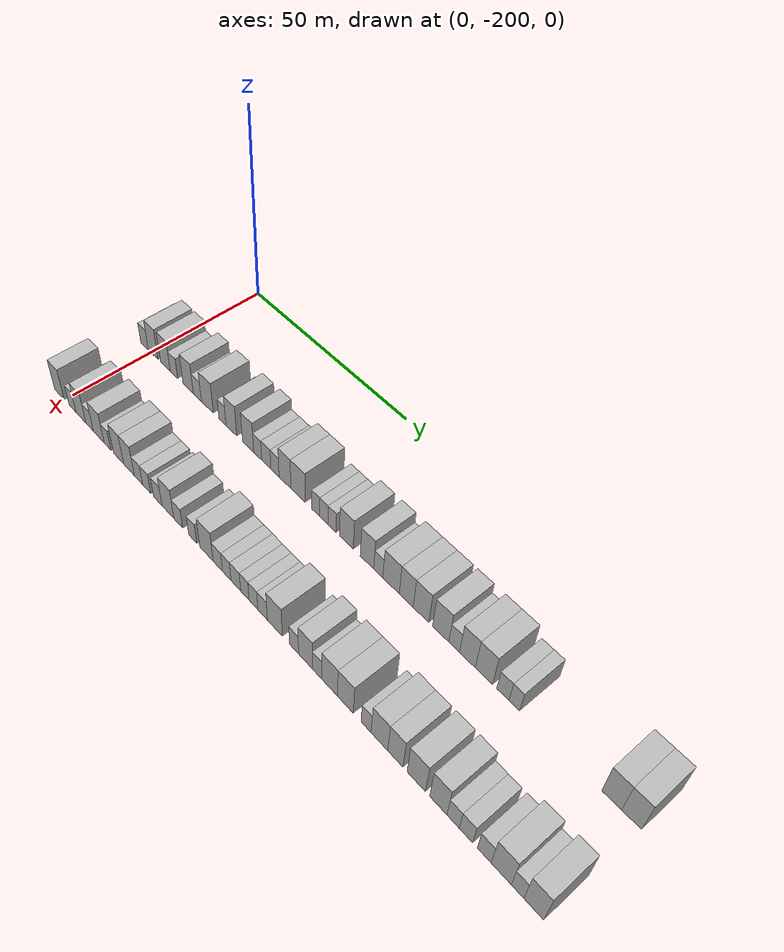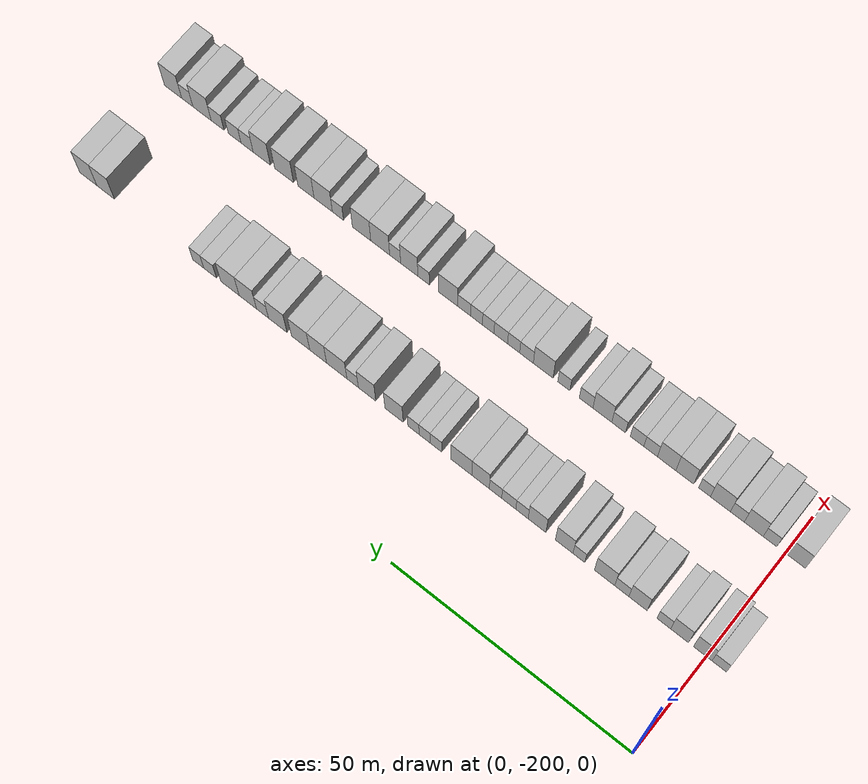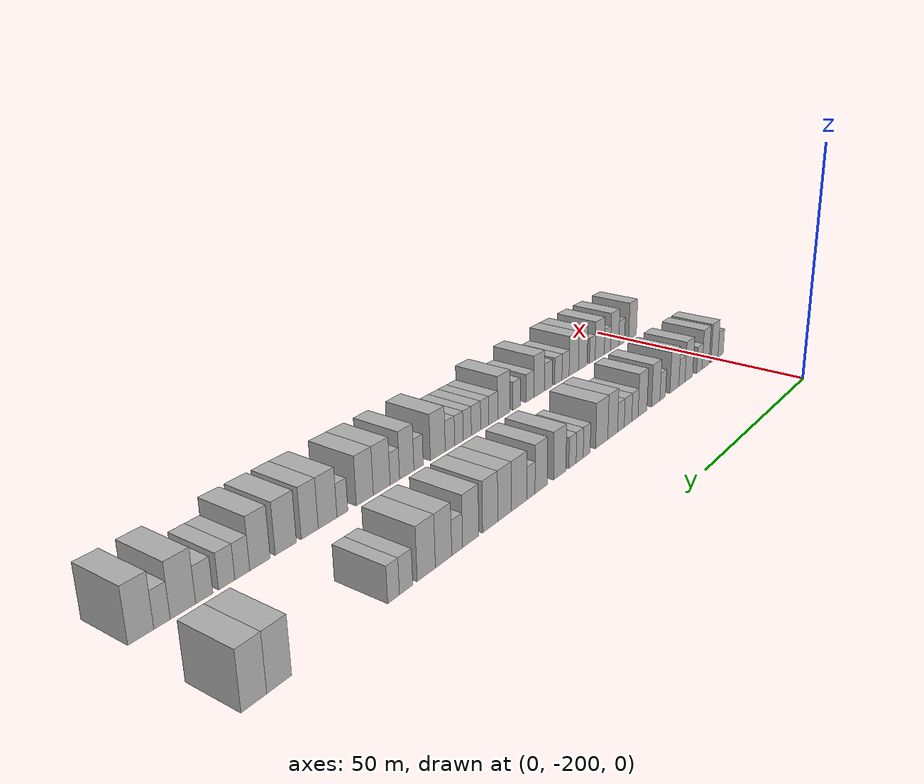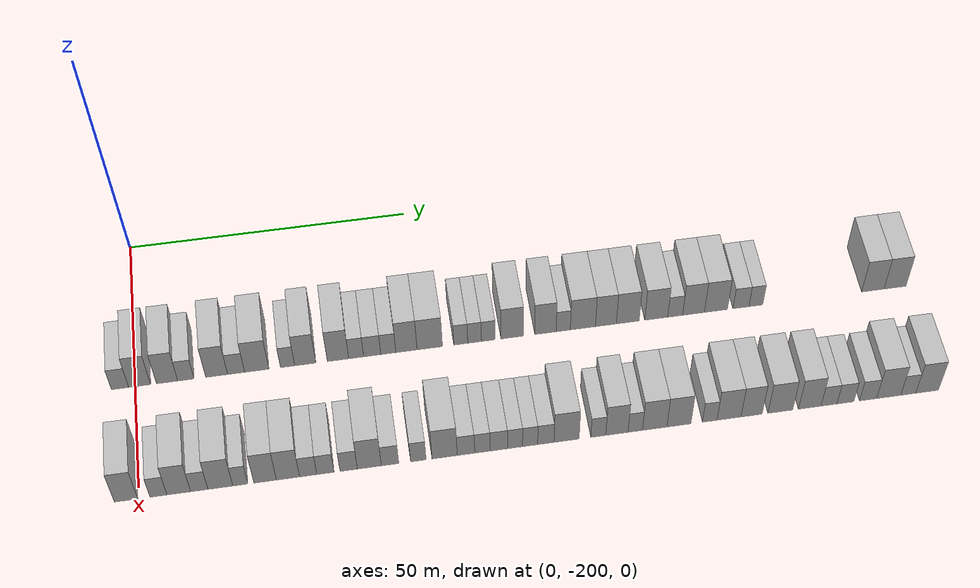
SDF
<sdf version="1.6">
 <world name="default">
  <model name="building_1">
   <static>1</static>
   <pose>25.0000 -202.5292 0 0.000000 0.000000 0.000000</pose>
   <link name="link">
    <pose>0 0 3.00 0 0 0</pose>
    <collision name="collision"><geometry><box><size>10.0000 2.9416 6.0000</size></box></geometry></collision>
    <visual name="visual">
     <cast_shadows>0</cast_shadows>
     <geometry><box><size>10.0000 2.9416 6.0000</size></box></geometry>
     <material>
      <script>
       <uri>model://HANNAS_wall/materials/scripts</uri>
       <uri>model://HANNAS_wall/materials/textures</uri>
       <name>vrc/HANNAS_wall</name>
      </script>
     </material>
    </visual>
   </link>
  </model>
  <model name="building_2">
   <static>1</static>
   <pose>25.0000 -199.1781 0 0.000000 0.000000 0.000000</pose>
   <link name="link">
    <pose>0 0 4.50 0 0 0</pose>
    <collision name="collision"><geometry><box><size>10.0000 3.7606 9.0000</size></box></geometry></collision>
    <visual name="visual">
     <cast_shadows>0</cast_shadows>
     <geometry><box><size>10.0000 3.7606 9.0000</size></box></geometry>
     <material>
      <script>
       <uri>model://HANNAS_wall/materials/scripts</uri>
       <uri>model://HANNAS_wall/materials/textures</uri>
       <name>vrc/HANNAS_wall</name>
      </script>
     </material>
    </visual>
   </link>
  </model>
  <model name="building_3">
   <static>1</static>
   <pose>25.0000 -194.4770 0 0.000000 0.000000 0.000000</pose>
   <link name="link">
    <pose>0 0 4.50 0 0 0</pose>
    <collision name="collision"><geometry><box><size>10.0000 3.6417 9.0000</size></box></geometry></collision>
    <visual name="visual">
     <cast_shadows>0</cast_shadows>
     <geometry><box><size>10.0000 3.6417 9.0000</size></box></geometry>
     <material>
      <script>
       <uri>model://HANNAS_wall/materials/scripts</uri>
       <uri>model://HANNAS_wall/materials/textures</uri>
       <name>vrc/HANNAS_wall</name>
      </script>
     </material>
    </visual>
   </link>
  </model>
  <model name="building_4">
   <static>1</static>
   <pose>25.0000 -191.2516 0 0.000000 0.000000 0.000000</pose>
   <link name="link">
    <pose>0 0 3.00 0 0 0</pose>
    <collision name="collision"><geometry><box><size>10.0000 2.8091 6.0000</size></box></geometry></collision>
    <visual name="visual">
     <cast_shadows>0</cast_shadows>
     <geometry><box><size>10.0000 2.8091 6.0000</size></box></geometry>
     <material>
      <script>
       <uri>model://HANNAS_wall/materials/scripts</uri>
       <uri>model://HANNAS_wall/materials/textures</uri>
       <name>vrc/HANNAS_wall</name>
      </script>
     </material>
    </visual>
   </link>
  </model>
  <model name="building_5">
   <static>1</static>
   <pose>25.0000 -185.9650 0 0.000000 0.000000 0.000000</pose>
   <link name="link">
    <pose>0 0 4.50 0 0 0</pose>
    <collision name="collision"><geometry><box><size>10.0000 3.7642 9.0000</size></box></geometry></collision>
    <visual name="visual">
     <cast_shadows>0</cast_shadows>
     <geometry><box><size>10.0000 3.7642 9.0000</size></box></geometry>
     <material>
      <script>
       <uri>model://HANNAS_wall/materials/scripts</uri>
       <uri>model://HANNAS_wall/materials/textures</uri>
       <name>vrc/HANNAS_wall</name>
      </script>
     </material>
    </visual>
   </link>
  </model>
  <model name="building_6">
   <static>1</static>
   <pose>25.0000 -182.6085 0 0.000000 0.000000 0.000000</pose>
   <link name="link">
    <pose>0 0 3.00 0 0 0</pose>
    <collision name="collision"><geometry><box><size>10.0000 2.9489 6.0000</size></box></geometry></collision>
    <visual name="visual">
     <cast_shadows>0</cast_shadows>
     <geometry><box><size>10.0000 2.9489 6.0000</size></box></geometry>
     <material>
      <script>
       <uri>model://HANNAS_wall/materials/scripts</uri>
       <uri>model://HANNAS_wall/materials/textures</uri>
       <name>vrc/HANNAS_wall</name>
      </script>
     </material>
    </visual>
   </link>
  </model>
  <model name="building_7">
   <static>1</static>
   <pose>25.0000 -179.0327 0 0.000000 0.000000 0.000000</pose>
   <link name="link">
    <pose>0 0 4.50 0 0 0</pose>
    <collision name="collision"><geometry><box><size>10.0000 4.2026 9.0000</size></box></geometry></collision>
    <visual name="visual">
     <cast_shadows>0</cast_shadows>
     <geometry><box><size>10.0000 4.2026 9.0000</size></box></geometry>
     <material>
      <script>
       <uri>model://HANNAS_wall/materials/scripts</uri>
       <uri>model://HANNAS_wall/materials/textures</uri>
       <name>vrc/HANNAS_wall</name>
      </script>
     </material>
    </visual>
   </link>
  </model>
  <model name="building_8">
   <static>1</static>
   <pose>25.0000 -173.6945 0 0.000000 0.000000 0.000000</pose>
   <link name="link">
    <pose>0 0 3.00 0 0 0</pose>
    <collision name="collision"><geometry><box><size>10.0000 2.4739 6.0000</size></box></geometry></collision>
    <visual name="visual">
     <cast_shadows>0</cast_shadows>
     <geometry><box><size>10.0000 2.4739 6.0000</size></box></geometry>
     <material>
      <script>
       <uri>model://HANNAS_wall/materials/scripts</uri>
       <uri>model://HANNAS_wall/materials/textures</uri>
       <name>vrc/HANNAS_wall</name>
      </script>
     </material>
    </visual>
   </link>
  </model>
  <model name="building_9">
   <static>1</static>
   <pose>25.0000 -170.6190 0 0.000000 0.000000 0.000000</pose>
   <link name="link">
    <pose>0 0 4.50 0 0 0</pose>
    <collision name="collision"><geometry><box><size>10.0000 3.6771 9.0000</size></box></geometry></collision>
    <visual name="visual">
     <cast_shadows>0</cast_shadows>
     <geometry><box><size>10.0000 3.6771 9.0000</size></box></geometry>
     <material>
      <script>
       <uri>model://HANNAS_wall/materials/scripts</uri>
       <uri>model://HANNAS_wall/materials/textures</uri>
       <name>vrc/HANNAS_wall</name>
      </script>
     </material>
    </visual>
   </link>
  </model>
  <model name="building_10">
   <static>1</static>
   <pose>25.0000 -164.9156 0 0.000000 0.000000 0.000000</pose>
   <link name="link">
    <pose>0 0 4.50 0 0 0</pose>
    <collision name="collision"><geometry><box><size>10.0000 3.7297 9.0000</size></box></geometry></collision>
    <visual name="visual">
     <cast_shadows>0</cast_shadows>
     <geometry><box><size>10.0000 3.7297 9.0000</size></box></geometry>
     <material>
      <script>
       <uri>model://HANNAS_wall/materials/scripts</uri>
       <uri>model://HANNAS_wall/materials/textures</uri>
       <name>vrc/HANNAS_wall</name>
      </script>
     </material>
    </visual>
   </link>
  </model>
  <model name="building_11">
   <static>1</static>
   <pose>25.0000 -161.7470 0 0.000000 0.000000 0.000000</pose>
   <link name="link">
    <pose>0 0 3.00 0 0 0</pose>
    <collision name="collision"><geometry><box><size>10.0000 2.6075 6.0000</size></box></geometry></collision>
    <visual name="visual">
     <cast_shadows>0</cast_shadows>
     <geometry><box><size>10.0000 2.6075 6.0000</size></box></geometry>
     <material>
      <script>
       <uri>model://HANNAS_wall/materials/scripts</uri>
       <uri>model://HANNAS_wall/materials/textures</uri>
       <name>vrc/HANNAS_wall</name>
      </script>
     </material>
    </visual>
   </link>
  </model>
  <model name="building_12">
   <static>1</static>
   <pose>25.0000 -158.9450 0 0.000000 0.000000 0.000000</pose>
   <link name="link">
    <pose>0 0 3.00 0 0 0</pose>
    <collision name="collision"><geometry><box><size>10.0000 2.9965 6.0000</size></box></geometry></collision>
    <visual name="visual">
     <cast_shadows>0</cast_shadows>
     <geometry><box><size>10.0000 2.9965 6.0000</size></box></geometry>
     <material>
      <script>
       <uri>model://HANNAS_wall/materials/scripts</uri>
       <uri>model://HANNAS_wall/materials/textures</uri>
       <name>vrc/HANNAS_wall</name>
      </script>
     </material>
    </visual>
   </link>
  </model>
  <model name="building_13">
   <static>1</static>
   <pose>25.0000 -156.1276 0 0.000000 0.000000 0.000000</pose>
   <link name="link">
    <pose>0 0 3.00 0 0 0</pose>
    <collision name="collision"><geometry><box><size>10.0000 2.6382 6.0000</size></box></geometry></collision>
    <visual name="visual">
     <cast_shadows>0</cast_shadows>
     <geometry><box><size>10.0000 2.6382 6.0000</size></box></geometry>
     <material>
      <script>
       <uri>model://HANNAS_wall/materials/scripts</uri>
       <uri>model://HANNAS_wall/materials/textures</uri>
       <name>vrc/HANNAS_wall</name>
      </script>
     </material>
    </visual>
   </link>
  </model>
  <model name="building_14">
   <static>1</static>
   <pose>25.0000 -152.9464 0 0.000000 0.000000 0.000000</pose>
   <link name="link">
    <pose>0 0 4.50 0 0 0</pose>
    <collision name="collision"><geometry><box><size>10.0000 3.7243 9.0000</size></box></geometry></collision>
    <visual name="visual">
     <cast_shadows>0</cast_shadows>
     <geometry><box><size>10.0000 3.7243 9.0000</size></box></geometry>
     <material>
      <script>
       <uri>model://HANNAS_wall/materials/scripts</uri>
       <uri>model://HANNAS_wall/materials/textures</uri>
       <name>vrc/HANNAS_wall</name>
      </script>
     </material>
    </visual>
   </link>
  </model>
  <model name="building_15">
   <static>1</static>
   <pose>25.0000 -148.8476 0 0.000000 0.000000 0.000000</pose>
   <link name="link">
    <pose>0 0 4.50 0 0 0</pose>
    <collision name="collision"><geometry><box><size>10.0000 4.4733 9.0000</size></box></geometry></collision>
    <visual name="visual">
     <cast_shadows>0</cast_shadows>
     <geometry><box><size>10.0000 4.4733 9.0000</size></box></geometry>
     <material>
      <script>
       <uri>model://HANNAS_wall/materials/scripts</uri>
       <uri>model://HANNAS_wall/materials/textures</uri>
       <name>vrc/HANNAS_wall</name>
      </script>
     </material>
    </visual>
   </link>
  </model>
  <model name="building_16">
   <static>1</static>
   <pose>25.0000 -143.3843 0 0.000000 0.000000 0.000000</pose>
   <link name="link">
    <pose>0 0 3.00 0 0 0</pose>
    <collision name="collision"><geometry><box><size>10.0000 2.4534 6.0000</size></box></geometry></collision>
    <visual name="visual">
     <cast_shadows>0</cast_shadows>
     <geometry><box><size>10.0000 2.4534 6.0000</size></box></geometry>
     <material>
      <script>
       <uri>model://HANNAS_wall/materials/scripts</uri>
       <uri>model://HANNAS_wall/materials/textures</uri>
       <name>vrc/HANNAS_wall</name>
      </script>
     </material>
    </visual>
   </link>
  </model>
  <model name="building_17">
   <static>1</static>
   <pose>25.0000 -140.9417 0 0.000000 0.000000 0.000000</pose>
   <link name="link">
    <pose>0 0 3.00 0 0 0</pose>
    <collision name="collision"><geometry><box><size>10.0000 2.4318 6.0000</size></box></geometry></collision>
    <visual name="visual">
     <cast_shadows>0</cast_shadows>
     <geometry><box><size>10.0000 2.4318 6.0000</size></box></geometry>
     <material>
      <script>
       <uri>model://HANNAS_wall/materials/scripts</uri>
       <uri>model://HANNAS_wall/materials/textures</uri>
       <name>vrc/HANNAS_wall</name>
      </script>
     </material>
    </visual>
   </link>
  </model>
  <model name="building_18">
   <static>1</static>
   <pose>25.0000 -138.5001 0 0.000000 0.000000 0.000000</pose>
   <link name="link">
    <pose>0 0 3.00 0 0 0</pose>
    <collision name="collision"><geometry><box><size>10.0000 2.4512 6.0000</size></box></geometry></collision>
    <visual name="visual">
     <cast_shadows>0</cast_shadows>
     <geometry><box><size>10.0000 2.4512 6.0000</size></box></geometry>
     <material>
      <script>
       <uri>model://HANNAS_wall/materials/scripts</uri>
       <uri>model://HANNAS_wall/materials/textures</uri>
       <name>vrc/HANNAS_wall</name>
      </script>
     </material>
    </visual>
   </link>
  </model>
  <model name="building_19">
   <static>1</static>
   <pose>25.0000 -134.2684 0 0.000000 0.000000 0.000000</pose>
   <link name="link">
    <pose>0 0 4.50 0 0 0</pose>
    <collision name="collision"><geometry><box><size>10.0000 4.0122 9.0000</size></box></geometry></collision>
    <visual name="visual">
     <cast_shadows>0</cast_shadows>
     <geometry><box><size>10.0000 4.0122 9.0000</size></box></geometry>
     <material>
      <script>
       <uri>model://HANNAS_wall/materials/scripts</uri>
       <uri>model://HANNAS_wall/materials/textures</uri>
       <name>vrc/HANNAS_wall</name>
      </script>
     </material>
    </visual>
   </link>
  </model>
  <model name="building_20">
   <static>1</static>
   <pose>25.0000 -128.3569 0 0.000000 0.000000 0.000000</pose>
   <link name="link">
    <pose>0 0 4.50 0 0 0</pose>
    <collision name="collision"><geometry><box><size>10.0000 3.8109 9.0000</size></box></geometry></collision>
    <visual name="visual">
     <cast_shadows>0</cast_shadows>
     <geometry><box><size>10.0000 3.8109 9.0000</size></box></geometry>
     <material>
      <script>
       <uri>model://HANNAS_wall/materials/scripts</uri>
       <uri>model://HANNAS_wall/materials/textures</uri>
       <name>vrc/HANNAS_wall</name>
      </script>
     </material>
    </visual>
   </link>
  </model>
  <model name="building_21">
   <static>1</static>
   <pose>25.0000 -125.1883 0 0.000000 0.000000 0.000000</pose>
   <link name="link">
    <pose>0 0 3.00 0 0 0</pose>
    <collision name="collision"><geometry><box><size>10.0000 2.5262 6.0000</size></box></geometry></collision>
    <visual name="visual">
     <cast_shadows>0</cast_shadows>
     <geometry><box><size>10.0000 2.5262 6.0000</size></box></geometry>
     <material>
      <script>
       <uri>model://HANNAS_wall/materials/scripts</uri>
       <uri>model://HANNAS_wall/materials/textures</uri>
       <name>vrc/HANNAS_wall</name>
      </script>
     </material>
    </visual>
   </link>
  </model>
  <model name="building_22">
   <static>1</static>
   <pose>25.0000 -121.6837 0 0.000000 0.000000 0.000000</pose>
   <link name="link">
    <pose>0 0 4.50 0 0 0</pose>
    <collision name="collision"><geometry><box><size>10.0000 4.4832 9.0000</size></box></geometry></collision>
    <visual name="visual">
     <cast_shadows>0</cast_shadows>
     <geometry><box><size>10.0000 4.4832 9.0000</size></box></geometry>
     <material>
      <script>
       <uri>model://HANNAS_wall/materials/scripts</uri>
       <uri>model://HANNAS_wall/materials/textures</uri>
       <name>vrc/HANNAS_wall</name>
      </script>
     </material>
    </visual>
   </link>
  </model>
  <model name="building_23">
   <static>1</static>
   <pose>25.0000 -117.5654 0 0.000000 0.000000 0.000000</pose>
   <link name="link">
    <pose>0 0 4.50 0 0 0</pose>
    <collision name="collision"><geometry><box><size>10.0000 3.7533 9.0000</size></box></geometry></collision>
    <visual name="visual">
     <cast_shadows>0</cast_shadows>
     <geometry><box><size>10.0000 3.7533 9.0000</size></box></geometry>
     <material>
      <script>
       <uri>model://HANNAS_wall/materials/scripts</uri>
       <uri>model://HANNAS_wall/materials/textures</uri>
       <name>vrc/HANNAS_wall</name>
      </script>
     </material>
    </visual>
   </link>
  </model>
  <model name="building_24">
   <static>1</static>
   <pose>25.0000 -113.6408 0 0.000000 0.000000 0.000000</pose>
   <link name="link">
    <pose>0 0 4.50 0 0 0</pose>
    <collision name="collision"><geometry><box><size>10.0000 4.0959 9.0000</size></box></geometry></collision>
    <visual name="visual">
     <cast_shadows>0</cast_shadows>
     <geometry><box><size>10.0000 4.0959 9.0000</size></box></geometry>
     <material>
      <script>
       <uri>model://HANNAS_wall/materials/scripts</uri>
       <uri>model://HANNAS_wall/materials/textures</uri>
       <name>vrc/HANNAS_wall</name>
      </script>
     </material>
    </visual>
   </link>
  </model>
  <model name="building_25">
   <static>1</static>
   <pose>25.0000 -108.5217 0 0.000000 0.000000 0.000000</pose>
   <link name="link">
    <pose>0 0 4.50 0 0 0</pose>
    <collision name="collision"><geometry><box><size>10.0000 4.1422 9.0000</size></box></geometry></collision>
    <visual name="visual">
     <cast_shadows>0</cast_shadows>
     <geometry><box><size>10.0000 4.1422 9.0000</size></box></geometry>
     <material>
      <script>
       <uri>model://HANNAS_wall/materials/scripts</uri>
       <uri>model://HANNAS_wall/materials/textures</uri>
       <name>vrc/HANNAS_wall</name>
      </script>
     </material>
    </visual>
   </link>
  </model>
  <model name="building_26">
   <static>1</static>
   <pose>25.0000 -105.1016 0 0.000000 0.000000 0.000000</pose>
   <link name="link">
    <pose>0 0 3.00 0 0 0</pose>
    <collision name="collision"><geometry><box><size>10.0000 2.6979 6.0000</size></box></geometry></collision>
    <visual name="visual">
     <cast_shadows>0</cast_shadows>
     <geometry><box><size>10.0000 2.6979 6.0000</size></box></geometry>
     <material>
      <script>
       <uri>model://HANNAS_wall/materials/scripts</uri>
       <uri>model://HANNAS_wall/materials/textures</uri>
       <name>vrc/HANNAS_wall</name>
      </script>
     </material>
    </visual>
   </link>
  </model>
  <model name="building_27">
   <static>1</static>
   <pose>25.0000 -101.7893 0 0.000000 0.000000 0.000000</pose>
   <link name="link">
    <pose>0 0 4.50 0 0 0</pose>
    <collision name="collision"><geometry><box><size>10.0000 3.9268 9.0000</size></box></geometry></collision>
    <visual name="visual">
     <cast_shadows>0</cast_shadows>
     <geometry><box><size>10.0000 3.9268 9.0000</size></box></geometry>
     <material>
      <script>
       <uri>model://HANNAS_wall/materials/scripts</uri>
       <uri>model://HANNAS_wall/materials/textures</uri>
       <name>vrc/HANNAS_wall</name>
      </script>
     </material>
    </visual>
   </link>
  </model>
  <model name="building_28">
   <static>1</static>
   <pose>25.0000 -97.7386 0 0.000000 0.000000 0.000000</pose>
   <link name="link">
    <pose>0 0 4.50 0 0 0</pose>
    <collision name="collision"><geometry><box><size>10.0000 4.1745 9.0000</size></box></geometry></collision>
    <visual name="visual">
     <cast_shadows>0</cast_shadows>
     <geometry><box><size>10.0000 4.1745 9.0000</size></box></geometry>
     <material>
      <script>
       <uri>model://HANNAS_wall/materials/scripts</uri>
       <uri>model://HANNAS_wall/materials/textures</uri>
       <name>vrc/HANNAS_wall</name>
      </script>
     </material>
    </visual>
   </link>
  </model>
  <model name="building_29">
   <static>1</static>
   <pose>25.0000 -93.1996 0 0.000000 0.000000 0.000000</pose>
   <link name="link">
    <pose>0 0 3.00 0 0 0</pose>
    <collision name="collision"><geometry><box><size>10.0000 2.9034 6.0000</size></box></geometry></collision>
    <visual name="visual">
     <cast_shadows>0</cast_shadows>
     <geometry><box><size>10.0000 2.9034 6.0000</size></box></geometry>
     <material>
      <script>
       <uri>model://HANNAS_wall/materials/scripts</uri>
       <uri>model://HANNAS_wall/materials/textures</uri>
       <name>vrc/HANNAS_wall</name>
      </script>
     </material>
    </visual>
   </link>
  </model>
  <model name="building_30">
   <static>1</static>
   <pose>25.0000 -90.4950 0 0.000000 0.000000 0.000000</pose>
   <link name="link">
    <pose>0 0 3.00 0 0 0</pose>
    <collision name="collision"><geometry><box><size>10.0000 2.5059 6.0000</size></box></geometry></collision>
    <visual name="visual">
     <cast_shadows>0</cast_shadows>
     <geometry><box><size>10.0000 2.5059 6.0000</size></box></geometry>
     <material>
      <script>
       <uri>model://HANNAS_wall/materials/scripts</uri>
       <uri>model://HANNAS_wall/materials/textures</uri>
       <name>vrc/HANNAS_wall</name>
      </script>
     </material>
    </visual>
   </link>
  </model>
  <model name="building_31">
   <static>1</static>
   <pose>25.0000 -69.0618 0 0.000000 0.000000 0.000000</pose>
   <link name="link">
    <pose>0 0 4.50 0 0 0</pose>
    <collision name="collision"><geometry><box><size>10.0000 4.1202 9.0000</size></box></geometry></collision>
    <visual name="visual">
     <cast_shadows>0</cast_shadows>
     <geometry><box><size>10.0000 4.1202 9.0000</size></box></geometry>
     <material>
      <script>
       <uri>model://HANNAS_wall/materials/scripts</uri>
       <uri>model://HANNAS_wall/materials/textures</uri>
       <name>vrc/HANNAS_wall</name>
      </script>
     </material>
    </visual>
   </link>
  </model>
  <model name="building_32">
   <static>1</static>
   <pose>25.0000 -64.9716 0 0.000000 0.000000 0.000000</pose>
   <link name="link">
    <pose>0 0 4.50 0 0 0</pose>
    <collision name="collision"><geometry><box><size>10.0000 4.0602 9.0000</size></box></geometry></collision>
    <visual name="visual">
     <cast_shadows>0</cast_shadows>
     <geometry><box><size>10.0000 4.0602 9.0000</size></box></geometry>
     <material>
      <script>
       <uri>model://HANNAS_wall/materials/scripts</uri>
       <uri>model://HANNAS_wall/materials/textures</uri>
       <name>vrc/HANNAS_wall</name>
      </script>
     </material>
    </visual>
   </link>
  </model>
  <model name="building_98">
   <static>1</static>
   <pose>47.0000 -202.0837 0 0.000000 0.000000 0.000000</pose>
   <link name="link">
    <pose>0 0 4.50 0 0 0</pose>
    <collision name="collision"><geometry><box><size>10.0000 3.8326 9.0000</size></box></geometry></collision>
    <visual name="visual">
     <cast_shadows>0</cast_shadows>
     <geometry><box><size>10.0000 3.8326 9.0000</size></box></geometry>
     <material>
      <script>
       <uri>model://HANNAS_wall/materials/scripts</uri>
       <uri>model://HANNAS_wall/materials/textures</uri>
       <name>vrc/HANNAS_wall</name>
      </script>
     </material>
    </visual>
   </link>
  </model>
  <model name="building_99">
   <static>1</static>
   <pose>47.0000 -196.7751 0 0.000000 0.000000 0.000000</pose>
   <link name="link">
    <pose>0 0 3.00 0 0 0</pose>
    <collision name="collision"><geometry><box><size>10.0000 2.7846 6.0000</size></box></geometry></collision>
    <visual name="visual">
     <cast_shadows>0</cast_shadows>
     <geometry><box><size>10.0000 2.7846 6.0000</size></box></geometry>
     <material>
      <script>
       <uri>model://HANNAS_wall/materials/scripts</uri>
       <uri>model://HANNAS_wall/materials/textures</uri>
       <name>vrc/HANNAS_wall</name>
      </script>
     </material>
    </visual>
   </link>
  </model>
  <model name="building_100">
   <static>1</static>
   <pose>47.0000 -193.4323 0 0.000000 0.000000 0.000000</pose>
   <link name="link">
    <pose>0 0 4.50 0 0 0</pose>
    <collision name="collision"><geometry><box><size>10.0000 3.9011 9.0000</size></box></geometry></collision>
    <visual name="visual">
     <cast_shadows>0</cast_shadows>
     <geometry><box><size>10.0000 3.9011 9.0000</size></box></geometry>
     <material>
      <script>
       <uri>model://HANNAS_wall/materials/scripts</uri>
       <uri>model://HANNAS_wall/materials/textures</uri>
       <name>vrc/HANNAS_wall</name>
      </script>
     </material>
    </visual>
   </link>
  </model>
  <model name="building_101">
   <static>1</static>
   <pose>47.0000 -190.0564 0 0.000000 0.000000 0.000000</pose>
   <link name="link">
    <pose>0 0 3.00 0 0 0</pose>
    <collision name="collision"><geometry><box><size>10.0000 2.8508 6.0000</size></box></geometry></collision>
    <visual name="visual">
     <cast_shadows>0</cast_shadows>
     <geometry><box><size>10.0000 2.8508 6.0000</size></box></geometry>
     <material>
      <script>
       <uri>model://HANNAS_wall/materials/scripts</uri>
       <uri>model://HANNAS_wall/materials/textures</uri>
       <name>vrc/HANNAS_wall</name>
      </script>
     </material>
    </visual>
   </link>
  </model>
  <model name="building_102">
   <static>1</static>
   <pose>47.0000 -186.5695 0 0.000000 0.000000 0.000000</pose>
   <link name="link">
    <pose>0 0 4.50 0 0 0</pose>
    <collision name="collision"><geometry><box><size>10.0000 4.1230 9.0000</size></box></geometry></collision>
    <visual name="visual">
     <cast_shadows>0</cast_shadows>
     <geometry><box><size>10.0000 4.1230 9.0000</size></box></geometry>
     <material>
      <script>
       <uri>model://HANNAS_wall/materials/scripts</uri>
       <uri>model://HANNAS_wall/materials/textures</uri>
       <name>vrc/HANNAS_wall</name>
      </script>
     </material>
    </visual>
   </link>
  </model>
  <model name="building_103">
   <static>1</static>
   <pose>47.0000 -183.2694 0 0.000000 0.000000 0.000000</pose>
   <link name="link">
    <pose>0 0 3.00 0 0 0</pose>
    <collision name="collision"><geometry><box><size>10.0000 2.4772 6.0000</size></box></geometry></collision>
    <visual name="visual">
     <cast_shadows>0</cast_shadows>
     <geometry><box><size>10.0000 2.4772 6.0000</size></box></geometry>
     <material>
      <script>
       <uri>model://HANNAS_wall/materials/scripts</uri>
       <uri>model://HANNAS_wall/materials/textures</uri>
       <name>vrc/HANNAS_wall</name>
      </script>
     </material>
    </visual>
   </link>
  </model>
  <model name="building_104">
   <static>1</static>
   <pose>47.0000 -179.1613 0 0.000000 0.000000 0.000000</pose>
   <link name="link">
    <pose>0 0 4.50 0 0 0</pose>
    <collision name="collision"><geometry><box><size>10.0000 3.7390 9.0000</size></box></geometry></collision>
    <visual name="visual">
     <cast_shadows>0</cast_shadows>
     <geometry><box><size>10.0000 3.7390 9.0000</size></box></geometry>
     <material>
      <script>
       <uri>model://HANNAS_wall/materials/scripts</uri>
       <uri>model://HANNAS_wall/materials/textures</uri>
       <name>vrc/HANNAS_wall</name>
      </script>
     </material>
    </visual>
   </link>
  </model>
  <model name="building_105">
   <static>1</static>
   <pose>47.0000 -175.3586 0 0.000000 0.000000 0.000000</pose>
   <link name="link">
    <pose>0 0 4.50 0 0 0</pose>
    <collision name="collision"><geometry><box><size>10.0000 3.8662 9.0000</size></box></geometry></collision>
    <visual name="visual">
     <cast_shadows>0</cast_shadows>
     <geometry><box><size>10.0000 3.8662 9.0000</size></box></geometry>
     <material>
      <script>
       <uri>model://HANNAS_wall/materials/scripts</uri>
       <uri>model://HANNAS_wall/materials/textures</uri>
       <name>vrc/HANNAS_wall</name>
      </script>
     </material>
    </visual>
   </link>
  </model>
  <model name="building_106">
   <static>1</static>
   <pose>47.0000 -171.9884 0 0.000000 0.000000 0.000000</pose>
   <link name="link">
    <pose>0 0 3.00 0 0 0</pose>
    <collision name="collision"><geometry><box><size>10.0000 2.8744 6.0000</size></box></geometry></collision>
    <visual name="visual">
     <cast_shadows>0</cast_shadows>
     <geometry><box><size>10.0000 2.8744 6.0000</size></box></geometry>
     <material>
      <script>
       <uri>model://HANNAS_wall/materials/scripts</uri>
       <uri>model://HANNAS_wall/materials/textures</uri>
       <name>vrc/HANNAS_wall</name>
      </script>
     </material>
    </visual>
   </link>
  </model>
  <model name="building_107">
   <static>1</static>
   <pose>47.0000 -169.1160 0 0.000000 0.000000 0.000000</pose>
   <link name="link">
    <pose>0 0 3.00 0 0 0</pose>
    <collision name="collision"><geometry><box><size>10.0000 2.8704 6.0000</size></box></geometry></collision>
    <visual name="visual">
     <cast_shadows>0</cast_shadows>
     <geometry><box><size>10.0000 2.8704 6.0000</size></box></geometry>
     <material>
      <script>
       <uri>model://HANNAS_wall/materials/scripts</uri>
       <uri>model://HANNAS_wall/materials/textures</uri>
       <name>vrc/HANNAS_wall</name>
      </script>
     </material>
    </visual>
   </link>
  </model>
  <model name="building_108">
   <static>1</static>
   <pose>47.0000 -165.2294 0 0.000000 0.000000 0.000000</pose>
   <link name="link">
    <pose>0 0 3.00 0 0 0</pose>
    <collision name="collision"><geometry><box><size>10.0000 2.9028 6.0000</size></box></geometry></collision>
    <visual name="visual">
     <cast_shadows>0</cast_shadows>
     <geometry><box><size>10.0000 2.9028 6.0000</size></box></geometry>
     <material>
      <script>
       <uri>model://HANNAS_wall/materials/scripts</uri>
       <uri>model://HANNAS_wall/materials/textures</uri>
       <name>vrc/HANNAS_wall</name>
      </script>
     </material>
    </visual>
   </link>
  </model>
  <model name="building_109">
   <static>1</static>
   <pose>47.0000 -161.7672 0 0.000000 0.000000 0.000000</pose>
   <link name="link">
    <pose>0 0 4.50 0 0 0</pose>
    <collision name="collision"><geometry><box><size>10.0000 4.0215 9.0000</size></box></geometry></collision>
    <visual name="visual">
     <cast_shadows>0</cast_shadows>
     <geometry><box><size>10.0000 4.0215 9.0000</size></box></geometry>
     <material>
      <script>
       <uri>model://HANNAS_wall/materials/scripts</uri>
       <uri>model://HANNAS_wall/materials/textures</uri>
       <name>vrc/HANNAS_wall</name>
      </script>
     </material>
    </visual>
   </link>
  </model>
  <model name="building_110">
   <static>1</static>
   <pose>47.0000 -158.2946 0 0.000000 0.000000 0.000000</pose>
   <link name="link">
    <pose>0 0 3.00 0 0 0</pose>
    <collision name="collision"><geometry><box><size>10.0000 2.9236 6.0000</size></box></geometry></collision>
    <visual name="visual">
     <cast_shadows>0</cast_shadows>
     <geometry><box><size>10.0000 2.9236 6.0000</size></box></geometry>
     <material>
      <script>
       <uri>model://HANNAS_wall/materials/scripts</uri>
       <uri>model://HANNAS_wall/materials/textures</uri>
       <name>vrc/HANNAS_wall</name>
      </script>
     </material>
    </visual>
   </link>
  </model>
  <model name="building_111">
   <static>1</static>
   <pose>47.0000 -153.5315 0 0.000000 0.000000 0.000000</pose>
   <link name="link">
    <pose>0 0 3.00 0 0 0</pose>
    <collision name="collision"><geometry><box><size>10.0000 2.6027 6.0000</size></box></geometry></collision>
    <visual name="visual">
     <cast_shadows>0</cast_shadows>
     <geometry><box><size>10.0000 2.6027 6.0000</size></box></geometry>
     <material>
      <script>
       <uri>model://HANNAS_wall/materials/scripts</uri>
       <uri>model://HANNAS_wall/materials/textures</uri>
       <name>vrc/HANNAS_wall</name>
      </script>
     </material>
    </visual>
   </link>
  </model>
  <model name="building_112">
   <static>1</static>
   <pose>47.0000 -149.0976 0 0.000000 0.000000 0.000000</pose>
   <link name="link">
    <pose>0 0 4.50 0 0 0</pose>
    <collision name="collision"><geometry><box><size>10.0000 4.2650 9.0000</size></box></geometry></collision>
    <visual name="visual">
     <cast_shadows>0</cast_shadows>
     <geometry><box><size>10.0000 4.2650 9.0000</size></box></geometry>
     <material>
      <script>
       <uri>model://HANNAS_wall/materials/scripts</uri>
       <uri>model://HANNAS_wall/materials/textures</uri>
       <name>vrc/HANNAS_wall</name>
      </script>
     </material>
    </visual>
   </link>
  </model>
  <model name="building_113">
   <static>1</static>
   <pose>47.0000 -145.4870 0 0.000000 0.000000 0.000000</pose>
   <link name="link">
    <pose>0 0 3.00 0 0 0</pose>
    <collision name="collision"><geometry><box><size>10.0000 2.9563 6.0000</size></box></geometry></collision>
    <visual name="visual">
     <cast_shadows>0</cast_shadows>
     <geometry><box><size>10.0000 2.9563 6.0000</size></box></geometry>
     <material>
      <script>
       <uri>model://HANNAS_wall/materials/scripts</uri>
       <uri>model://HANNAS_wall/materials/textures</uri>
       <name>vrc/HANNAS_wall</name>
      </script>
     </material>
    </visual>
   </link>
  </model>
  <model name="building_114">
   <static>1</static>
   <pose>47.0000 -142.6968 0 0.000000 0.000000 0.000000</pose>
   <link name="link">
    <pose>0 0 3.00 0 0 0</pose>
    <collision name="collision"><geometry><box><size>10.0000 2.6241 6.0000</size></box></geometry></collision>
    <visual name="visual">
     <cast_shadows>0</cast_shadows>
     <geometry><box><size>10.0000 2.6241 6.0000</size></box></geometry>
     <material>
      <script>
       <uri>model://HANNAS_wall/materials/scripts</uri>
       <uri>model://HANNAS_wall/materials/textures</uri>
       <name>vrc/HANNAS_wall</name>
      </script>
     </material>
    </visual>
   </link>
  </model>
  <model name="building_115">
   <static>1</static>
   <pose>47.0000 -139.9035 0 0.000000 0.000000 0.000000</pose>
   <link name="link">
    <pose>0 0 3.00 0 0 0</pose>
    <collision name="collision"><geometry><box><size>10.0000 2.9624 6.0000</size></box></geometry></collision>
    <visual name="visual">
     <cast_shadows>0</cast_shadows>
     <geometry><box><size>10.0000 2.9624 6.0000</size></box></geometry>
     <material>
      <script>
       <uri>model://HANNAS_wall/materials/scripts</uri>
       <uri>model://HANNAS_wall/materials/textures</uri>
       <name>vrc/HANNAS_wall</name>
      </script>
     </material>
    </visual>
   </link>
  </model>
  <model name="building_116">
   <static>1</static>
   <pose>47.0000 -137.1556 0 0.000000 0.000000 0.000000</pose>
   <link name="link">
    <pose>0 0 3.00 0 0 0</pose>
    <collision name="collision"><geometry><box><size>10.0000 2.5333 6.0000</size></box></geometry></collision>
    <visual name="visual">
     <cast_shadows>0</cast_shadows>
     <geometry><box><size>10.0000 2.5333 6.0000</size></box></geometry>
     <material>
      <script>
       <uri>model://HANNAS_wall/materials/scripts</uri>
       <uri>model://HANNAS_wall/materials/textures</uri>
       <name>vrc/HANNAS_wall</name>
      </script>
     </material>
    </visual>
   </link>
  </model>
  <model name="building_117">
   <static>1</static>
   <pose>47.0000 -134.6008 0 0.000000 0.000000 0.000000</pose>
   <link name="link">
    <pose>0 0 3.00 0 0 0</pose>
    <collision name="collision"><geometry><box><size>10.0000 2.5762 6.0000</size></box></geometry></collision>
    <visual name="visual">
     <cast_shadows>0</cast_shadows>
     <geometry><box><size>10.0000 2.5762 6.0000</size></box></geometry>
     <material>
      <script>
       <uri>model://HANNAS_wall/materials/scripts</uri>
       <uri>model://HANNAS_wall/materials/textures</uri>
       <name>vrc/HANNAS_wall</name>
      </script>
     </material>
    </visual>
   </link>
  </model>
  <model name="building_118">
   <static>1</static>
   <pose>47.0000 -131.9092 0 0.000000 0.000000 0.000000</pose>
   <link name="link">
    <pose>0 0 3.00 0 0 0</pose>
    <collision name="collision"><geometry><box><size>10.0000 2.8072 6.0000</size></box></geometry></collision>
    <visual name="visual">
     <cast_shadows>0</cast_shadows>
     <geometry><box><size>10.0000 2.8072 6.0000</size></box></geometry>
     <material>
      <script>
       <uri>model://HANNAS_wall/materials/scripts</uri>
       <uri>model://HANNAS_wall/materials/textures</uri>
       <name>vrc/HANNAS_wall</name>
      </script>
     </material>
    </visual>
   </link>
  </model>
  <model name="building_119">
   <static>1</static>
   <pose>47.0000 -128.3597 0 0.000000 0.000000 0.000000</pose>
   <link name="link">
    <pose>0 0 4.50 0 0 0</pose>
    <collision name="collision"><geometry><box><size>10.0000 4.2918 9.0000</size></box></geometry></collision>
    <visual name="visual">
     <cast_shadows>0</cast_shadows>
     <geometry><box><size>10.0000 4.2918 9.0000</size></box></geometry>
     <material>
      <script>
       <uri>model://HANNAS_wall/materials/scripts</uri>
       <uri>model://HANNAS_wall/materials/textures</uri>
       <name>vrc/HANNAS_wall</name>
      </script>
     </material>
    </visual>
   </link>
  </model>
  <model name="building_120">
   <static>1</static>
   <pose>47.0000 -122.9304 0 0.000000 0.000000 0.000000</pose>
   <link name="link">
    <pose>0 0 3.00 0 0 0</pose>
    <collision name="collision"><geometry><box><size>10.0000 2.5667 6.0000</size></box></geometry></collision>
    <visual name="visual">
     <cast_shadows>0</cast_shadows>
     <geometry><box><size>10.0000 2.5667 6.0000</size></box></geometry>
     <material>
      <script>
       <uri>model://HANNAS_wall/materials/scripts</uri>
       <uri>model://HANNAS_wall/materials/textures</uri>
       <name>vrc/HANNAS_wall</name>
      </script>
     </material>
    </visual>
   </link>
  </model>
  <model name="building_121">
   <static>1</static>
   <pose>47.0000 -119.7244 0 0.000000 0.000000 0.000000</pose>
   <link name="link">
    <pose>0 0 4.50 0 0 0</pose>
    <collision name="collision"><geometry><box><size>10.0000 3.8454 9.0000</size></box></geometry></collision>
    <visual name="visual">
     <cast_shadows>0</cast_shadows>
     <geometry><box><size>10.0000 3.8454 9.0000</size></box></geometry>
     <material>
      <script>
       <uri>model://HANNAS_wall/materials/scripts</uri>
       <uri>model://HANNAS_wall/materials/textures</uri>
       <name>vrc/HANNAS_wall</name>
      </script>
     </material>
    </visual>
   </link>
  </model>
  <model name="building_122">
   <static>1</static>
   <pose>47.0000 -116.5697 0 0.000000 0.000000 0.000000</pose>
   <link name="link">
    <pose>0 0 3.00 0 0 0</pose>
    <collision name="collision"><geometry><box><size>10.0000 2.4639 6.0000</size></box></geometry></collision>
    <visual name="visual">
     <cast_shadows>0</cast_shadows>
     <geometry><box><size>10.0000 2.4639 6.0000</size></box></geometry>
     <material>
      <script>
       <uri>model://HANNAS_wall/materials/scripts</uri>
       <uri>model://HANNAS_wall/materials/textures</uri>
       <name>vrc/HANNAS_wall</name>
      </script>
     </material>
    </visual>
   </link>
  </model>
  <model name="building_123">
   <static>1</static>
   <pose>47.0000 -113.2220 0 0.000000 0.000000 0.000000</pose>
   <link name="link">
    <pose>0 0 4.50 0 0 0</pose>
    <collision name="collision"><geometry><box><size>10.0000 4.2315 9.0000</size></box></geometry></collision>
    <visual name="visual">
     <cast_shadows>0</cast_shadows>
     <geometry><box><size>10.0000 4.2315 9.0000</size></box></geometry>
     <material>
      <script>
       <uri>model://HANNAS_wall/materials/scripts</uri>
       <uri>model://HANNAS_wall/materials/textures</uri>
       <name>vrc/HANNAS_wall</name>
      </script>
     </material>
    </visual>
   </link>
  </model>
  <model name="building_124">
   <static>1</static>
   <pose>47.0000 -109.0310 0 0.000000 0.000000 0.000000</pose>
   <link name="link">
    <pose>0 0 4.50 0 0 0</pose>
    <collision name="collision"><geometry><box><size>10.0000 4.1504 9.0000</size></box></geometry></collision>
    <visual name="visual">
     <cast_shadows>0</cast_shadows>
     <geometry><box><size>10.0000 4.1504 9.0000</size></box></geometry>
     <material>
      <script>
       <uri>model://HANNAS_wall/materials/scripts</uri>
       <uri>model://HANNAS_wall/materials/textures</uri>
       <name>vrc/HANNAS_wall</name>
      </script>
     </material>
    </visual>
   </link>
  </model>
  <model name="building_125">
   <static>1</static>
   <pose>47.0000 -103.6965 0 0.000000 0.000000 0.000000</pose>
   <link name="link">
    <pose>0 0 3.00 0 0 0</pose>
    <collision name="collision"><geometry><box><size>10.0000 2.5186 6.0000</size></box></geometry></collision>
    <visual name="visual">
     <cast_shadows>0</cast_shadows>
     <geometry><box><size>10.0000 2.5186 6.0000</size></box></geometry>
     <material>
      <script>
       <uri>model://HANNAS_wall/materials/scripts</uri>
       <uri>model://HANNAS_wall/materials/textures</uri>
       <name>vrc/HANNAS_wall</name>
      </script>
     </material>
    </visual>
   </link>
  </model>
  <model name="building_126">
   <static>1</static>
   <pose>47.0000 -100.3523 0 0.000000 0.000000 0.000000</pose>
   <link name="link">
    <pose>0 0 4.50 0 0 0</pose>
    <collision name="collision"><geometry><box><size>10.0000 4.1700 9.0000</size></box></geometry></collision>
    <visual name="visual">
     <cast_shadows>0</cast_shadows>
     <geometry><box><size>10.0000 4.1700 9.0000</size></box></geometry>
     <material>
      <script>
       <uri>model://HANNAS_wall/materials/scripts</uri>
       <uri>model://HANNAS_wall/materials/textures</uri>
       <name>vrc/HANNAS_wall</name>
      </script>
     </material>
    </visual>
   </link>
  </model>
  <model name="building_127">
   <static>1</static>
   <pose>47.0000 -96.4172 0 0.000000 0.000000 0.000000</pose>
   <link name="link">
    <pose>0 0 4.50 0 0 0</pose>
    <collision name="collision"><geometry><box><size>10.0000 3.7000 9.0000</size></box></geometry></collision>
    <visual name="visual">
     <cast_shadows>0</cast_shadows>
     <geometry><box><size>10.0000 3.7000 9.0000</size></box></geometry>
     <material>
      <script>
       <uri>model://HANNAS_wall/materials/scripts</uri>
       <uri>model://HANNAS_wall/materials/textures</uri>
       <name>vrc/HANNAS_wall</name>
      </script>
     </material>
    </visual>
   </link>
  </model>
  <model name="building_128">
   <static>1</static>
   <pose>47.0000 -91.3952 0 0.000000 0.000000 0.000000</pose>
   <link name="link">
    <pose>0 0 4.50 0 0 0</pose>
    <collision name="collision"><geometry><box><size>10.0000 4.3441 9.0000</size></box></geometry></collision>
    <visual name="visual">
     <cast_shadows>0</cast_shadows>
     <geometry><box><size>10.0000 4.3441 9.0000</size></box></geometry>
     <material>
      <script>
       <uri>model://HANNAS_wall/materials/scripts</uri>
       <uri>model://HANNAS_wall/materials/textures</uri>
       <name>vrc/HANNAS_wall</name>
      </script>
     </material>
    </visual>
   </link>
  </model>
  <model name="building_129">
   <static>1</static>
   <pose>47.0000 -86.2376 0 0.000000 0.000000 0.000000</pose>
   <link name="link">
    <pose>0 0 4.50 0 0 0</pose>
    <collision name="collision"><geometry><box><size>10.0000 3.9709 9.0000</size></box></geometry></collision>
    <visual name="visual">
     <cast_shadows>0</cast_shadows>
     <geometry><box><size>10.0000 3.9709 9.0000</size></box></geometry>
     <material>
      <script>
       <uri>model://HANNAS_wall/materials/scripts</uri>
       <uri>model://HANNAS_wall/materials/textures</uri>
       <name>vrc/HANNAS_wall</name>
      </script>
     </material>
    </visual>
   </link>
  </model>
  <model name="building_130">
   <static>1</static>
   <pose>47.0000 -82.8508 0 0.000000 0.000000 0.000000</pose>
   <link name="link">
    <pose>0 0 3.00 0 0 0</pose>
    <collision name="collision"><geometry><box><size>10.0000 2.8027 6.0000</size></box></geometry></collision>
    <visual name="visual">
     <cast_shadows>0</cast_shadows>
     <geometry><box><size>10.0000 2.8027 6.0000</size></box></geometry>
     <material>
      <script>
       <uri>model://HANNAS_wall/materials/scripts</uri>
       <uri>model://HANNAS_wall/materials/textures</uri>
       <name>vrc/HANNAS_wall</name>
      </script>
     </material>
    </visual>
   </link>
  </model>
  <model name="building_131">
   <static>1</static>
   <pose>47.0000 -79.9627 0 0.000000 0.000000 0.000000</pose>
   <link name="link">
    <pose>0 0 3.00 0 0 0</pose>
    <collision name="collision"><geometry><box><size>10.0000 2.9736 6.0000</size></box></geometry></collision>
    <visual name="visual">
     <cast_shadows>0</cast_shadows>
     <geometry><box><size>10.0000 2.9736 6.0000</size></box></geometry>
     <material>
      <script>
       <uri>model://HANNAS_wall/materials/scripts</uri>
       <uri>model://HANNAS_wall/materials/textures</uri>
       <name>vrc/HANNAS_wall</name>
      </script>
     </material>
    </visual>
   </link>
  </model>
  <model name="building_132">
   <static>1</static>
   <pose>47.0000 -75.9763 0 0.000000 0.000000 0.000000</pose>
   <link name="link">
    <pose>0 0 3.00 0 0 0</pose>
    <collision name="collision"><geometry><box><size>10.0000 2.9993 6.0000</size></box></geometry></collision>
    <visual name="visual">
     <cast_shadows>0</cast_shadows>
     <geometry><box><size>10.0000 2.9993 6.0000</size></box></geometry>
     <material>
      <script>
       <uri>model://HANNAS_wall/materials/scripts</uri>
       <uri>model://HANNAS_wall/materials/textures</uri>
       <name>vrc/HANNAS_wall</name>
      </script>
     </material>
    </visual>
   </link>
  </model>
  <model name="building_133">
   <static>1</static>
   <pose>47.0000 -72.3382 0 0.000000 0.000000 0.000000</pose>
   <link name="link">
    <pose>0 0 4.50 0 0 0</pose>
    <collision name="collision"><geometry><box><size>10.0000 4.2769 9.0000</size></box></geometry></collision>
    <visual name="visual">
     <cast_shadows>0</cast_shadows>
     <geometry><box><size>10.0000 4.2769 9.0000</size></box></geometry>
     <material>
      <script>
       <uri>model://HANNAS_wall/materials/scripts</uri>
       <uri>model://HANNAS_wall/materials/textures</uri>
       <name>vrc/HANNAS_wall</name>
      </script>
     </material>
    </visual>
   </link>
  </model>
  <model name="building_134">
   <static>1</static>
   <pose>47.0000 -68.8823 0 0.000000 0.000000 0.000000</pose>
   <link name="link">
    <pose>0 0 3.00 0 0 0</pose>
    <collision name="collision"><geometry><box><size>10.0000 2.6349 6.0000</size></box></geometry></collision>
    <visual name="visual">
     <cast_shadows>0</cast_shadows>
     <geometry><box><size>10.0000 2.6349 6.0000</size></box></geometry>
     <material>
      <script>
       <uri>model://HANNAS_wall/materials/scripts</uri>
       <uri>model://HANNAS_wall/materials/textures</uri>
       <name>vrc/HANNAS_wall</name>
      </script>
     </material>
    </visual>
   </link>
  </model>
  <model name="building_135">
   <static>1</static>
   <pose>47.0000 -65.5305 0 0.000000 0.000000 0.000000</pose>
   <link name="link">
    <pose>0 0 4.50 0 0 0</pose>
    <collision name="collision"><geometry><box><size>10.0000 4.0687 9.0000</size></box></geometry></collision>
    <visual name="visual">
     <cast_shadows>0</cast_shadows>
     <geometry><box><size>10.0000 4.0687 9.0000</size></box></geometry>
     <material>
      <script>
       <uri>model://HANNAS_wall/materials/scripts</uri>
       <uri>model://HANNAS_wall/materials/textures</uri>
       <name>vrc/HANNAS_wall</name>
      </script>
     </material>
    </visual>
   </link>
  </model>
 </world>
</sdf>
